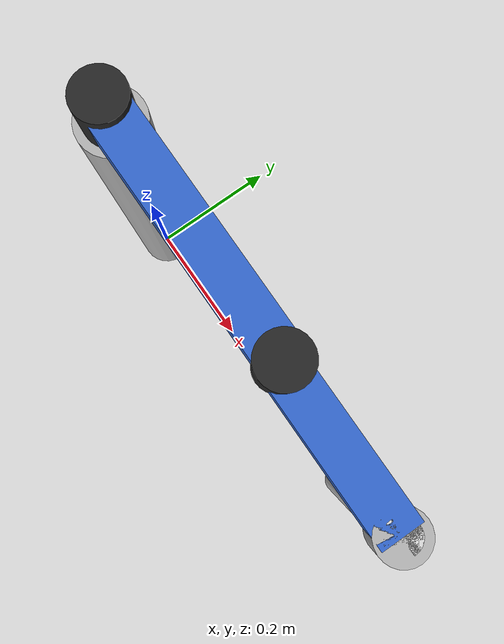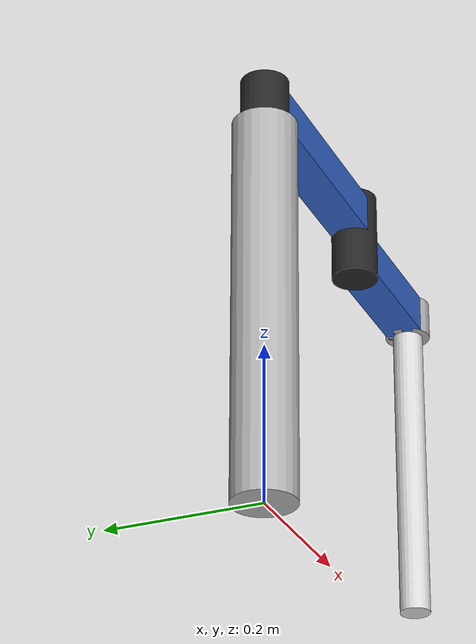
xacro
<?xml version="1.0"?>
<robot xmlns:xacro="http://www.ros.org/wiki/xacro" name="scara_rrrp">

    <xacro:property name="PI" value="3.1415926535897931"/>
    <xacro:property name="base_height" value="0.5"/>
    <xacro:property name="base_radius" value="0.04"/>
    <xacro:property name="link1_length" value="0.3"/>
    <xacro:property name="link2_length" value="0.2"/>
    <xacro:property name="link_width" value="0.05"/>
    <xacro:property name="link_height" value="0.05"/>
    <xacro:property name="joint_housing_radius" value="0.03"/>
    <xacro:property name="joint_housing_height" value="0.12"/>
    <xacro:property name="quill_housing_length" value="0.05"/>
    <xacro:property name="quill_housing_radius" value="0.03"/>
    <xacro:property name="quill_length" value="0.45"/>
    <xacro:property name="quill_radius" value="0.02"/>

    <material name="light_grey">
        <color rgba="0.7 0.7 0.7 1.0"/>
    </material>
    <material name="blue">
        <color rgba="0.2 0.4 0.8 1.0"/>
    </material>
    <material name="black">
        <color rgba="0.15 0.15 0.15 1.0"/>
    </material>
    <material name="chrome">
        <color rgba="0.85 0.85 0.85 1.0"/>
    </material>

    <link name="world"/>

    <joint name="world_to_base_joint" type="fixed">
        <parent link="world"/>
        <child link="base_link"/>
        <origin xyz="0 0 0" rpy="0 0 0"/>
    </joint>

    <link name="base_link">
        <visual>
            <geometry>
                <cylinder length="${base_height}" radius="${base_radius}"/>
            </geometry>
            <origin xyz="0 0 ${base_height/2}" rpy="0 0 0"/>
            <material name="light_grey"/>
        </visual>
        <collision>
            <geometry>
                <cylinder length="${base_height}" radius="${base_radius}"/>
            </geometry>
            <origin xyz="0 0 ${base_height}" rpy="0 0 0"/>
        </collision>
        <inertial>
            <mass value="5.0"/>
            <inertia ixx="0.01" ixy="0" ixz="0" iyy="0.01" iyz="0" izz="0.02"/>
        </inertial>
    </link>

    <joint name="joint1" type="revolute">
        <parent link="base_link"/>
        <child link="link1"/>
        <origin xyz="0 0 ${base_height}" rpy="0 0 0"/>
        <axis xyz="0 0 1"/>
        <limit lower="${-PI}" upper="${PI}" effort="100" velocity="1.0"/>
    </joint>

    <link name="link1">
        <visual>
            <geometry>
                <box size="${link1_length} ${link_width} ${link_height}"/>
            </geometry>
            <origin xyz="${link1_length/2} 0 ${link_width/2}" rpy="0 0 0"/>
            <material name="blue"/>
        </visual>
        <collision>
            <geometry>
                <box size="${link1_length} ${link_width} ${link_height}"/>
            </geometry>
            <origin xyz="${link1_length/2} 0 0" rpy="0 0 0"/>
        </collision>
        <visual>
            <geometry>
                <cylinder radius="${joint_housing_radius}" length="${joint_housing_height}"/>
            </geometry>
            <origin xyz="0 0 0" rpy="0 0 0"/>
            <material name="black"/>
        </visual>
        <inertial>
            <mass value="1.5"/>
            <origin xyz="${link1_length/2} 0 0" rpy="0 0 0"/>
            <inertia ixx="0.01" ixy="0" ixz="0" iyy="0.01" iyz="0" izz="0.01"/>
        </inertial>
    </link>

    <joint name="joint2" type="revolute">
        <parent link="link1"/>
        <child link="link2"/>
        <origin xyz="${link1_length} 0 0" rpy="0 0 0"/>
        <axis xyz="0 0 1"/>
        <limit lower="${-PI*0.9}" upper="${PI*0.9}" effort="100" velocity="1.0"/>
    </joint>

    <link name="link2">
        <visual>
            <geometry>
                <box size="${link2_length} ${link_width} ${link_height}"/>
            </geometry>
            <origin xyz="${link2_length/2} 0 ${-link_height/2}" rpy="0 0 0"/>
            <material name="blue"/>
        </visual>
        <collision>
            <geometry>
                <box size="${link2_length} ${link_width} ${link_height}"/>
            </geometry>
            <origin xyz="0 0 0" rpy="0 0 0"/>
        </collision>
        <visual>
            <geometry>
                <cylinder radius="${joint_housing_radius}" length="${joint_housing_height}"/>
            </geometry>
            <origin xyz="0 0 0" rpy="0 0 0"/>
            <material name="black"/>
        </visual>
        <inertial>
            <mass value="1.0"/>
            <origin xyz="${link2_length/2} 0 0" rpy="0 0 0"/>
            <inertia ixx="0.01" ixy="0" ixz="0" iyy="0.01" iyz="0" izz="0.01"/>
        </inertial>
    </link>

    <joint name="joint3" type="revolute">
        <parent link="link2"/>
        <child link="quill_housing_link"/>
        <origin xyz="${link2_length} 0 0" rpy="0 0 0"/>
        <axis xyz="0 0 1"/>
        <limit lower="${-PI}" upper="${PI}" effort="50" velocity="2.0"/>
    </joint>

    <link name="quill_housing_link">
        <visual>
            <geometry>
                <cylinder radius="${quill_housing_radius}" length="${quill_housing_length}"/>
            </geometry>
            <origin xyz="0 0 ${-quill_housing_length/2}" rpy="0 0 0"/>
            <material name="light_grey"/>
        </visual>
        <collision>
            <geometry>
                <cylinder radius="${quill_housing_radius}" length="${quill_housing_length}"/>
            </geometry>
            <origin xyz="0 0 ${-quill_housing_length/2}" rpy="0 0 0"/>
        </collision>
        <inertial>
            <mass value="0.5"/>
            <inertia ixx="0.001" ixy="0" ixz="0" iyy="0.001" iyz="0" izz="0.001"/>
        </inertial>
    </link>

    <joint name="joint4" type="prismatic">
        <parent link="quill_housing_link"/>
        <child link="tool_link"/>
        <origin xyz="0 0 0" rpy="0 0 0"/>
        <axis xyz="0 0 -1"/>
        <limit lower="-5.0" upper="5.0" effort="50" velocity="0.5"/>
    </joint>

    <link name="tool_link">
        <visual>
            <geometry>
                <cylinder radius="${quill_radius}" length="${quill_length}"/>
            </geometry>
            <origin xyz="0 0 ${-quill_length/2}" rpy="0 0 0"/>
            <material name="chrome"/>
        </visual>
        <collision>
            <geometry>
                <cylinder radius="${quill_radius}" length="${quill_length}"/>
            </geometry>
            <origin xyz="0 0 ${-quill_length/2}" rpy="0 0 0"/>
        </collision>
        <inertial>
            <mass value="0.2"/>
            <inertia ixx="0.001" ixy="0" ixz="0" iyy="0.001" iyz="0" izz="0.001"/>
        </inertial>
    </link>
</robot>
